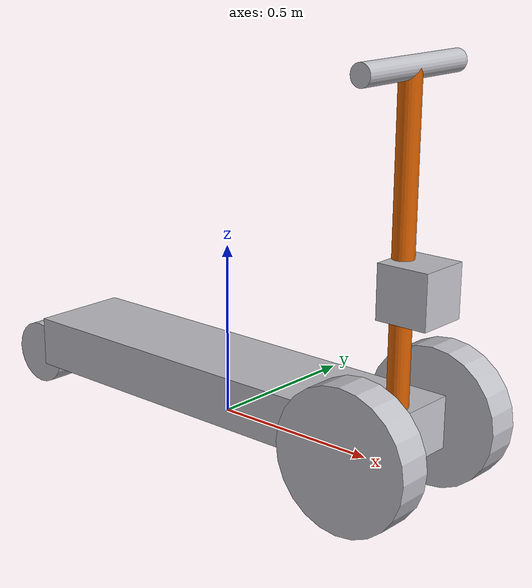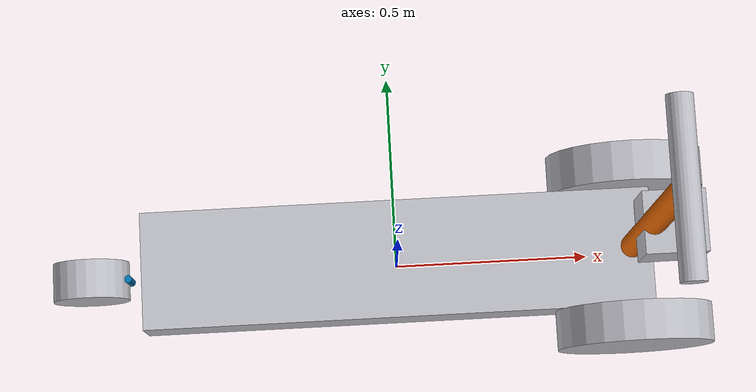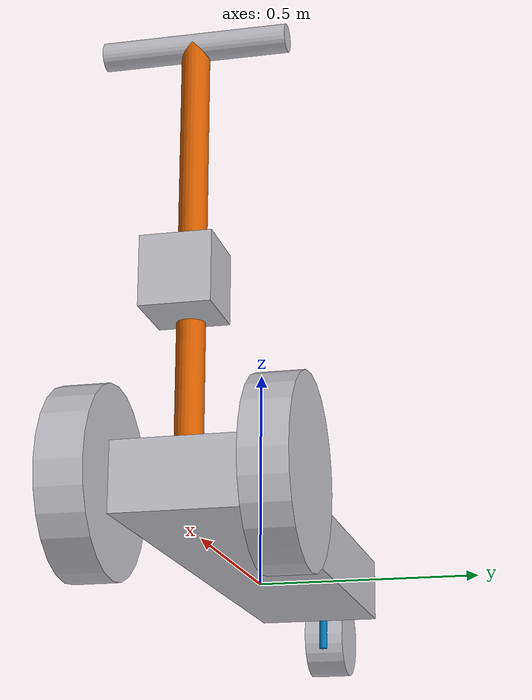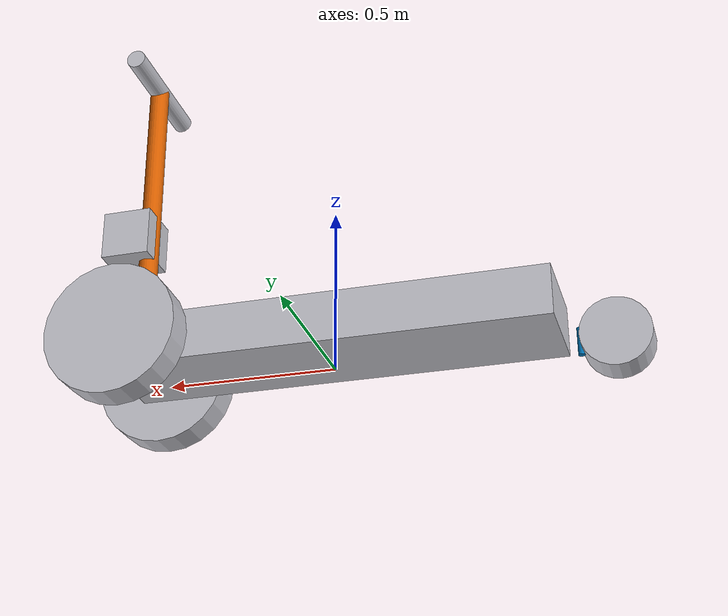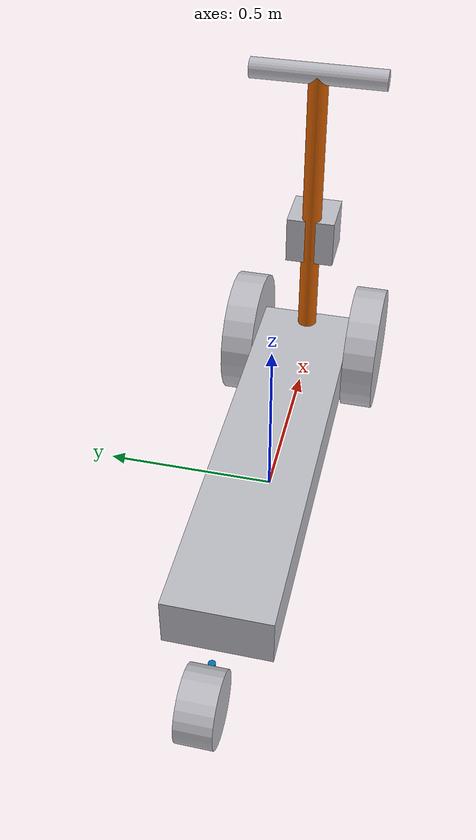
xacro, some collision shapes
<?xml version='1.0'?>

<robot name="glide" xmlns:xacro="http://www.ros.org/wiki/xacro">

  <!--Includue Files-->
  <xacro:include filename="$(find glide_description)/urdf/glide.gazebo" />
  <xacro:include filename="$(find glide_description)/urdf/glide.trans" />
  <xacro:include filename="$(find glide_description)/urdf/materials.xacro" />

  <!--Links-->

  <link name='base_link'>
   <pose>0 0 0.1 0 0 0</pose>

    <inertial>
      <mass value="5.0"/>
      <origin xyz="0 0 0.1" rpy=" 0 0 0"/>
      <inertia ixx="0.1" ixy="0" ixz="0" iyy="0.1" iyz="0" izz="0.1"/>
    </inertial>

    <collision name='collision'>
      <geometry>
        <box size="1.3 0.3 0.15"/>
      </geometry>
    </collision>

    <visual name='base_link_visual'>
      <origin xyz="0 0 0.1" rpy=" 0 0 0"/>
      <geometry>
        <box size="1.3 0.3 0.15"/>
      </geometry>
    </visual>

  </link>

  <link name="lw_1">
    <collision name="collision">
      <origin xyz="0 0 0" rpy="0 1.5707 1.5707"/>
      <geometry>
        <cylinder radius="0.2" length="0.1"/>
      </geometry>
    </collision>
    <visual name="left_wheel_visual">
      <origin xyz="0 0 0" rpy="0 1.5707 1.5707"/>
      <geometry>
        <cylinder radius="0.2" length="0.1"/>
      </geometry>
    </visual>
    <inertial>
      <origin xyz="0 0 0" rpy="0 1.5707 1.5707"/>
      <mass value="5"/>
      <inertia ixx=".1" ixy="0.0" ixz="0.0" iyy=".1" iyz="0.0" izz=".1"/>
    </inertial>
  </link>

  <link name="rw_1">
     <collision name="collision">
      <origin xyz="0 0 0" rpy="0 1.5707 1.5707"/>
      <geometry>
        <cylinder radius="0.2" length="0.1"/>
      </geometry>
    </collision>
    <visual name="right_wheel_visual">
      <origin xyz="0 0 0" rpy="0 1.5707 1.5707"/>
      <geometry>
        <cylinder radius="0.2" length="0.1"/>
      </geometry>
    </visual>
    <inertial>
      <origin xyz="0 0 0" rpy="0 1.5707 1.5707"/>
      <mass value="5"/>
      <inertia ixx=".1" ixy="0.0" ixz="0.0" iyy=".1" iyz="0.0" izz=".1"/>
    </inertial>
  </link>

  <link name="bw_1">
   <collision name="collision">
      <origin xyz="0 0 0" rpy="0 1.5707 1.5707"/>
      <geometry>
        <cylinder radius="0.1" length="0.1"/>
      </geometry>
    </collision>
    <visual name="right_wheel_visual">
      <origin xyz="0 0 0" rpy="0 1.5707 1.5707"/>
      <geometry>
        <cylinder radius="0.1" length="0.1"/>
      </geometry>
    </visual>
    <inertial>
      <origin xyz="0 0 0" rpy="0 1.5707 1.5707"/>
      <mass value="5"/>
      <inertia ixx=".1" ixy="0.0" ixz="0.0" iyy=".1" iyz="0.0" izz=".1"/>
    </inertial>
  </link>

  <link name="rear_stem">
     <collision name="rear_stem_">
      <origin xyz="0 0 0" rpy="0 0 0"/>
      <geometry>
        <cylinder radius="0.01" length="0.08"/>
      </geometry>
    </collision>
    <visual name="rear_stem_visual">
      <origin xyz="0 0 0" rpy="0 0 0"/>
      <geometry>
        <cylinder radius="0.01" length="0.08"/>
      </geometry>
    </visual>
    <inertial>
      <origin xyz="0 0 0" rpy="0 0 0"/>
      <mass value="2"/>
      <inertia ixx=".1" ixy="0.0" ixz="0.0" iyy=".1" iyz="0.0" izz=".1"/>
    </inertial>
  </link>

  <link name="stem">
    <collision name="stem_">
      <origin xyz="0 0 0" rpy="0 0 0"/>
      <geometry>
        <cylinder radius="0.03" length="1"/>
      </geometry>
    </collision>
    <visual name="stem_visual">
      <origin xyz="0 0 0" rpy="0 0 0"/>
      <geometry>
        <cylinder radius="0.03" length="1"/>
      </geometry>
    </visual>
    <inertial>
      <origin xyz="0 0 0" rpy="0 0 0"/>
      <mass value="5"/>
      <inertia ixx=".1" ixy="0.0" ixz="0.0" iyy=".1" iyz="0.0" izz=".1"/>
    </inertial>
  </link>

  <link name="handle_link_1">
    <collision name="handlestem_">
      <origin xyz="0 0 0" rpy="0 1.5707 1.5707"/>
      <geometry>
        <cylinder radius="0.03" length="0.4"/>
      </geometry>
    </collision>
    <visual name="stem_visual">
      <origin xyz="0 0 0" rpy="0 1.5707 1.5707"/>
      <geometry>
        <cylinder radius="0.03" length="0.4"/>
      </geometry>
    </visual>
    <inertial>
      <origin xyz="0 0 0" rpy="0 1.5707 1.5707"/>
      <mass value="5"/>
      <inertia ixx=".1" ixy="0.0" ixz="0.0" iyy=".1" iyz="0.0" izz=".1"/>
    </inertial>
  </link>

  <link name="lidar_link_1">
    <collision>
      <origin xyz="0 0 0.1" rpy="0 0 1.5708"/>
      <geometry>
    <box size="0.15 0.15 0.15"/>
      </geometry>
    </collision>

    <visual>
      <origin xyz="0 0 .1" rpy="0 0 1.5708"/>
      <geometry>
        <mesh filename="package://glide_description/meshes/hokuyo.dae"/>
      </geometry>
    </visual>

    <inertial>
      <mass value="1e-5" />
      <origin xyz="0 0 0.1" rpy="0 0 1.5708"/>
      <inertia ixx="1e-6" ixy="0" ixz="0" iyy="1e-6" iyz="0" izz="1e-6" />
    </inertial>
  </link>

  <!--Joints-->

  <joint type="continuous" name="bw_joint">
    <origin xyz="-0.1 0 0" rpy="0 0 0"/>
    <child link="bw_1"/>
    <parent link="rear_stem"/>
    <axis xyz="0 1 0" rpy="0 0 0"/>
    <limit effort="10000" velocity="1000"/>
    <joint_properties damping="1.0" friction="1.0"/>
  </joint>

  <joint type="revolute" name="rear_stem_hinge">
    <origin xyz="-0.7 0 0" rpy="0 0 0"/>
    <child link="rear_stem"/>
    <parent link="base_link"/>
    <axis  xyz="0 0 1" rpy="0 0 0"/>
    <limit lower="-0.80" upper="0.80" effort="20" velocity="2.0"/>
    <joint_properties damping="1.0" friction="1.0"/>
  </joint>

  <joint type="continuous" name="lw_joint">
    <origin xyz="0.6 0.20 0.1" rpy="0 0 0"/>
    <!--origin xyz="0.1 0.13 0" rpy="0 1.5707 1.5707"/-->
    <child link="lw_1"/>
    <parent link="base_link"/>
    <axis xyz="0 1 0" rpy="0 0 0"/>
    <limit effort="10000" velocity="1000"/>
    <joint_properties damping="1.0" friction="1.0"/>
  </joint>

  <joint type="continuous" name="rw_joint">
    <origin xyz="0.6 -0.20 0.1" rpy="0 0 0"/>
    <!--origin xyz="0.1 -0.13 0" rpy="0 1.5707 1.5707"/-->
    <child link="rw_1"/>
    <parent link="base_link"/>
    <axis xyz="0 1 0" rpy="0 0 0"/>
    <limit effort="10000" velocity="1000"/>
    <joint_properties damping="1.0" friction="1.0"/>
  </joint>

  <joint type="fixed" name="stem_hinge">
    <origin xyz="0.6 0 0.55" rpy="0 0 0"/>
    <!--origin xyz="0.1 0.13 0" rpy="0 1.5707 1.5707"/-->
    <child link="stem"/>
    <parent link="base_link"/>
    <axis xyz="0 1 0" rpy="0 0 0"/>
    <limit effort="10000" velocity="1000"/>
    <joint_properties damping="1.0" friction="1.0"/>
  </joint>

  <joint type="fixed" name="handle_joint">
   <origin xyz="0 0 0.5" rpy="1.5707 1.5707 1.5707"/>
    <!--origin xyz="0.1 0.13 0" rpy="0 1.5707 1.5707"/-->
    <child link="handle_link_1"/>
    <parent link="stem"/>
    <axis xyz="0 1 0" rpy="0 0 0"/>
    <limit effort="10000" velocity="1000"/>
    <joint_properties damping="1.0" friction="1.0"/>
  </joint>

  <joint name="lidar_joint" type="fixed">
    <axis xyz="0 1 0" />
    <origin xyz="0.65 0 0.4" rpy="0 0 -1.5708"/>
    <parent link="base_link"/>
    <child link="lidar_link_1"/>
  </joint>

</robot>

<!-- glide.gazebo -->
<robot name="Glide" xmlns:xacro="http://www.ros.org/wiki/xacro" >

<xacro:property name="body_color" value="Gazebo/Silver" />

<gazebo>
  <plugin filename="libgazebo_ros_control.so" name="control"/>
</gazebo>

<gazebo reference="base_link">
  <material>${body_color}</material>
  <mu1>0.2</mu1>
  <mu2>0.2</mu2>
  <selfCollide>true</selfCollide>
  <gravity>true</gravity>
</gazebo>

<gazebo reference="b_axle_1">
  <material>${body_color}</material>
  <mu1>0.2</mu1>
  <mu2>0.2</mu2>
  <selfCollide>true</selfCollide>
</gazebo>

<gazebo reference="rw_1">
  <material>${body_color}</material>
  <mu1>0.2</mu1>
  <mu2>0.2</mu2>
  <selfCollide>true</selfCollide>
</gazebo>

<gazebo reference="lw_1">
  <material>${body_color}</material>
  <mu1>0.2</mu1>
  <mu2>0.2</mu2>
  <selfCollide>true</selfCollide>
</gazebo>

<gazebo reference="bw_1">
  <material>${body_color}</material>
  <mu1>0.2</mu1>
  <mu2>0.2</mu2>
  <selfCollide>true</selfCollide>
</gazebo>

<gazebo reference="lidar_link_1">
  <material>${body_color}</material>
  <mu1>0.2</mu1>
  <mu2>0.2</mu2>
  <selfCollide>true</selfCollide>
</gazebo>

<gazebo reference="handle_link_1">
  <material>${body_color}</material>
  <mu1>0.2</mu1>
  <mu2>0.2</mu2>
  <selfCollide>true</selfCollide>
</gazebo>

<!--Differential Drive Controller-->
<gazebo>
  <plugin name="differential_drive_controller" filename="libgazebo_ros_diff_drive.so">
    <!-- Plugin update rate in Hz -->
    <updateRate>100</updateRate>
    <leftJoint>lw_joint</leftJoint>
    <rightJoint>rw_joint</rightJoint>
    <wheelSeparation>0.7</wheelSeparation>
    <wheelDiameter>0.4</wheelDiameter>
    <wheelAcceleration>1.0</wheelAcceleration>
    <wheelTorque>200</wheelTorque>
    <commandTopic>cmd_vel</commandTopic>
    <odometryTopic>odometry</odometryTopic>
    <odometryFrame>odom</odometryFrame>
    <robotBaseFrame>base_link</robotBaseFrame>
    <odometrySource>world</odometrySource>
    <publishWheelTF>true</publishWheelTF>
    <publishOdom>true</publishOdom>
    <publishWheelJointState>true</publishWheelJointState>
    <legacyMode>false</legacyMode>
    <publishOdomTF>true</publishOdomTF>
    <publishTf>true</publishTf>
    <rosDebugLevel>na</rosDebugLevel>
  </plugin>
</gazebo>

<!--Lidar Sensor-->
<gazebo reference="lidar_link_1">
  <sensor type="ray" name="LiDaR_sensor">
    <pose>0 0 0 0 0 0</pose>
    <visualize>true</visualize>
    <update_rate>100</update_rate>
    <ray>
      <scan>
        <horizontal>
          <samples>720</samples>
          <resolution>1</resolution>
            <min_angle>1.0472</min_angle>
            <max_angle>2.0944</max_angle>
        </horizontal>
      </scan>
      <range>
        <min>0.10</min>
        <max>30</max>
        <resolution>0.5</resolution>
      </range>
      <noise>
        <type>gaussian</type>
       <mean>0.0</mean>
        <stddev>0.001</stddev>
      </noise>
    </ray>
    <always_on>1</always_on>
    <plugin name="gazebo_ros_head_hokuyo_controller" filename="libgazebo_ros_laser.so">
      <topicName>base_scan</topicName>
      <frameName>lidar_link_1</frameName>
    </plugin>
  </sensor>
</gazebo>

<!--IMU Sensor-->
  <gazebo reference="base_link">
    <gravity>true</gravity>
    <sensor name="imu_sensor" type="imu">
      <always_on>true</always_on>
      <update_rate>10.0</update_rate>
      <visualize>true</visualize>
      <topic>__default_topic__</topic>
      <plugin filename="libgazebo_ros_imu_sensor.so" name="imu_plugin">
        <topicName>imu/data</topicName>
        <bodyName>base_link</bodyName>
        <updateRateHZ>100.0</updateRateHZ>
        <gaussianNoise>0.0</gaussianNoise>
        <xyzOffset>0 0 0</xyzOffset>
        <rpyOffset>0 0 0</rpyOffset>
        <frameName>base_link</frameName>
        <initialOrientationAsReference>false</initialOrientationAsReference>
      </plugin>
      <pose>0 0 0 0 0 0</pose>
    </sensor>
  </gazebo>

<!--GPS Sensor-->
<gazebo>
    <plugin name="novatel_gps_sim" filename="libhector_gazebo_ros_gps.so">
      <alwaysOn>1</alwaysOn>
      <frameId>base_link</frameId>
      <referenceHeading>90</referenceHeading>
      <updateRate>100.0</updateRate>
      <bodyName>base_link</bodyName>
      <topicName>gps/fix</topicName>
      <velocityTopicName>gps/fix_velocity</velocityTopicName>
      <drift>5.0 5.0 5.0</drift>
      <gaussianNoise>0.1 0.1 0.1</gaussianNoise>
      <velocityDrift>0 0 0</velocityDrift>
      <velocityGaussianNoise>0.1 0.1 0.1</velocityGaussianNoise>
    </plugin>
  </gazebo>

</robot>

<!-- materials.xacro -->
<robot name="Glide" xmlns:xacro="http://www.ros.org/wiki/xacro" >

<material name="silver">
  <color rgba="0.700 0.700 0.700 1.000"/>
</material>

</robot>
